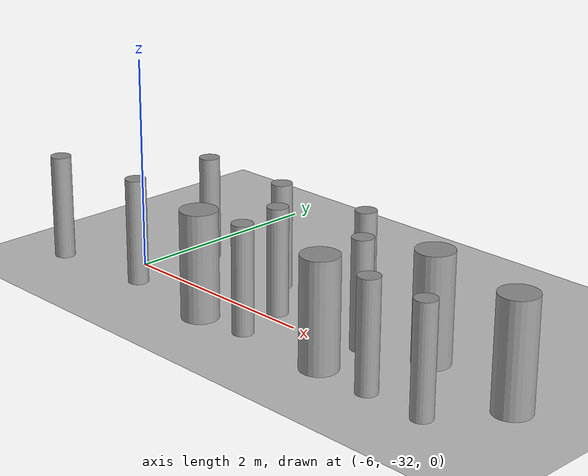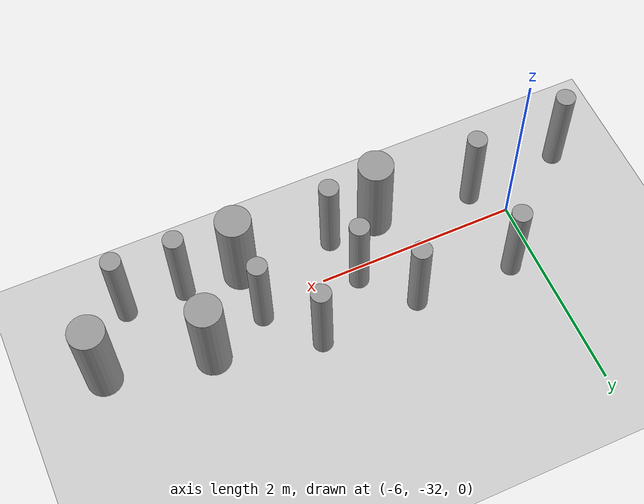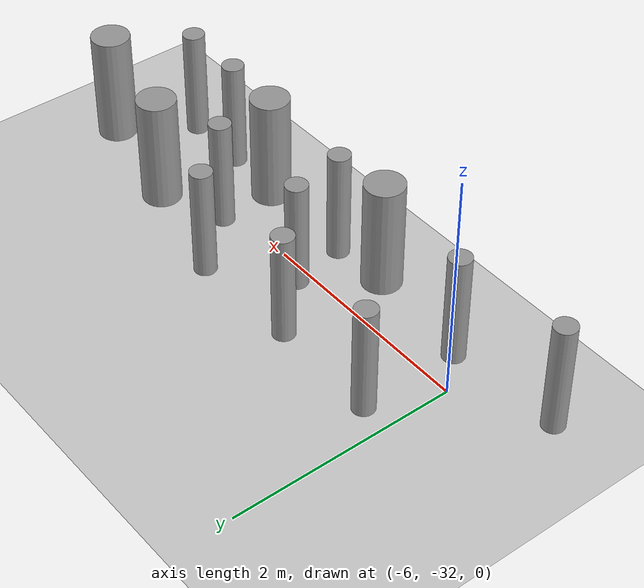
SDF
<sdf version="1.6">
 <world name="default">
  <model name="ground_plane">
   <static>1</static>
   <link name="link">
    <collision name="collision">
     <geometry><plane><normal>0 0 1</normal><size>100 100</size></plane></geometry>
     <surface><friction><ode><mu>100</mu><mu2>50</mu2></ode></friction></surface>
    </collision>
    <visual name="visual">
     <cast_shadows>0</cast_shadows>
     <geometry><plane><normal>0 0 1</normal><size>100 100</size></plane></geometry>
     <material>
      <script><uri>file://media/materials/scripts/gazebo.material</uri><name>Gazebo/Grey</name></script>
     </material>
    </visual>
   </link>
  </model>
  <model name="cyl_wall_clone_clone_3_clone_3">
   <link name="link_0">
    <pose>-2.73893 -0.366465 0 0 -0 0</pose>
    <inertial>
     <mass>0.0374993</mass>
     <inertia>
      <ixx>0.00321281</ixx>
      <ixy>0</ixy>
      <ixz>0</ixz>
      <iyy>0.00321281</iyy>
      <iyz>0</iyz>
      <izz>0.000175774</izz>
     </inertia>
    </inertial>
    <visual name="visual">
     <geometry><cylinder><radius>0.0968661</radius><length>1</length></cylinder></geometry>
     <material>
      <lighting>1</lighting>
      <script><uri>file://media/materials/scripts/gazebo.material</uri><name>Gazebo/Grey</name></script>
      <ambient>0.3 0.3 0.3 1</ambient>
      <diffuse>0.7 0.7 0.7 1</diffuse>
      <specular>0.01 0.01 0.01 1</specular>
      <emissive>0 0 0 1</emissive>
     </material>
    </visual>
    <collision name="collision">
     <geometry><cylinder><radius>0.096866</radius><length>1</length></cylinder></geometry>
     <surface>
      <friction>
       <ode><mu>1</mu><mu2>1</mu2><fdir1>0 0 0</fdir1><slip1>0</slip1><slip2>0</slip2></ode>
       <torsional>
        <coefficient>1</coefficient>
        <patch_radius>0</patch_radius>
        <surface_radius>0</surface_radius>
        <use_patch_radius>1</use_patch_radius>
        <ode><slip>0</slip></ode>
       </torsional>
      </friction>
      <bounce><restitution_coefficient>0</restitution_coefficient><threshold>1e+06</threshold></bounce>
      <contact>
       <collide_without_contact>0</collide_without_contact>
       <collide_without_contact_bitmask>1</collide_without_contact_bitmask>
       <collide_bitmask>1</collide_bitmask>
       <ode>
        <soft_cfm>0</soft_cfm>
        <soft_erp>0.2</soft_erp>
        <kp>1e+13</kp>
        <kd>1</kd>
        <max_vel>0.01</max_vel>
        <min_depth>0</min_depth>
       </ode>
       <bullet>
        <split_impulse>1</split_impulse>
        <split_impulse_penetration_threshold>-0.01</split_impulse_penetration_threshold>
        <soft_cfm>0</soft_cfm>
        <soft_erp>0.2</soft_erp>
        <kp>1e+13</kp>
        <kd>1</kd>
       </bullet>
      </contact>
     </surface>
    </collision>
   </link>
   <link name="link_0_clone">
    <pose>-1.73893 0.61877 0 0 -0 0</pose>
    <inertial>
     <mass>0.0374993</mass>
     <inertia>
      <ixx>0.00321281</ixx>
      <ixy>0</ixy>
      <ixz>0</ixz>
      <iyy>0.00321281</iyy>
      <iyz>0</iyz>
      <izz>0.000175774</izz>
     </inertia>
    </inertial>
    <visual name="visual">
     <geometry><cylinder><radius>0.0968661</radius><length>1</length></cylinder></geometry>
     <material>
      <lighting>1</lighting>
      <script><uri>file://media/materials/scripts/gazebo.material</uri><name>Gazebo/Grey</name></script>
      <ambient>0.3 0.3 0.3 1</ambient>
      <diffuse>0.7 0.7 0.7 1</diffuse>
      <specular>0.01 0.01 0.01 1</specular>
      <emissive>0 0 0 1</emissive>
      <shader type="pixel"/>
     </material>
    </visual>
    <collision name="collision">
     <geometry><cylinder><radius>0.096866</radius><length>1</length></cylinder></geometry>
     <surface>
      <friction>
       <ode><mu>1</mu><mu2>1</mu2><fdir1>0 0 0</fdir1><slip1>0</slip1><slip2>0</slip2></ode>
       <torsional>
        <coefficient>1</coefficient>
        <patch_radius>0</patch_radius>
        <surface_radius>0</surface_radius>
        <use_patch_radius>1</use_patch_radius>
        <ode><slip>0</slip></ode>
       </torsional>
      </friction>
      <bounce><restitution_coefficient>0</restitution_coefficient><threshold>1e+06</threshold></bounce>
      <contact>
       <collide_without_contact>0</collide_without_contact>
       <collide_without_contact_bitmask>1</collide_without_contact_bitmask>
       <collide_bitmask>1</collide_bitmask>
       <ode>
        <soft_cfm>0</soft_cfm>
        <soft_erp>0.2</soft_erp>
        <kp>1e+13</kp>
        <kd>1</kd>
        <max_vel>0.01</max_vel>
        <min_depth>0</min_depth>
       </ode>
       <bullet>
        <split_impulse>1</split_impulse>
        <split_impulse_penetration_threshold>-0.01</split_impulse_penetration_threshold>
        <soft_cfm>0</soft_cfm>
        <soft_erp>0.2</soft_erp>
        <kp>1e+13</kp>
        <kd>1</kd>
       </bullet>
      </contact>
     </surface>
    </collision>
   </link>
   <link name="link_0_clone_clone">
    <pose>-0.327073 0.143919 0 0 -0 0</pose>
    <inertial>
     <mass>0.0374993</mass>
     <inertia>
      <ixx>0.00321281</ixx>
      <ixy>0</ixy>
      <ixz>0</ixz>
      <iyy>0.00321281</iyy>
      <iyz>0</iyz>
      <izz>0.000175774</izz>
     </inertia>
    </inertial>
    <visual name="visual">
     <geometry><cylinder><radius>0.0968661</radius><length>1</length></cylinder></geometry>
     <material>
      <lighting>1</lighting>
      <script><uri>file://media/materials/scripts/gazebo.material</uri><name>Gazebo/Grey</name></script>
      <ambient>0.3 0.3 0.3 1</ambient>
      <diffuse>0.7 0.7 0.7 1</diffuse>
      <specular>0.01 0.01 0.01 1</specular>
      <emissive>0 0 0 1</emissive>
      <shader type="pixel"/>
     </material>
    </visual>
    <collision name="collision">
     <geometry><cylinder><radius>0.096866</radius><length>1</length></cylinder></geometry>
     <surface>
      <friction>
       <ode><mu>1</mu><mu2>1</mu2><fdir1>0 0 0</fdir1><slip1>0</slip1><slip2>0</slip2></ode>
       <torsional>
        <coefficient>1</coefficient>
        <patch_radius>0</patch_radius>
        <surface_radius>0</surface_radius>
        <use_patch_radius>1</use_patch_radius>
        <ode><slip>0</slip></ode>
       </torsional>
      </friction>
      <bounce><restitution_coefficient>0</restitution_coefficient><threshold>1e+06</threshold></bounce>
      <contact>
       <collide_without_contact>0</collide_without_contact>
       <collide_without_contact_bitmask>1</collide_without_contact_bitmask>
       <collide_bitmask>1</collide_bitmask>
       <ode>
        <soft_cfm>0</soft_cfm>
        <soft_erp>0.2</soft_erp>
        <kp>1e+13</kp>
        <kd>1</kd>
        <max_vel>0.01</max_vel>
        <min_depth>0</min_depth>
       </ode>
       <bullet>
        <split_impulse>1</split_impulse>
        <split_impulse_penetration_threshold>-0.01</split_impulse_penetration_threshold>
        <soft_cfm>0</soft_cfm>
        <soft_erp>0.2</soft_erp>
        <kp>1e+13</kp>
        <kd>1</kd>
       </bullet>
      </contact>
     </surface>
    </collision>
   </link>
   <link name="link_0_clone_clone_0">
    <pose>1.26107 -0.419359 0 0 -0 0</pose>
    <inertial>
     <mass>0.0374993</mass>
     <inertia>
      <ixx>0.00321281</ixx>
      <ixy>0</ixy>
      <ixz>0</ixz>
      <iyy>0.00321281</iyy>
      <iyz>0</iyz>
      <izz>0.000175774</izz>
     </inertia>
    </inertial>
    <visual name="visual">
     <geometry><cylinder><radius>0.0968661</radius><length>1</length></cylinder></geometry>
     <material>
      <lighting>1</lighting>
      <script><uri>file://media/materials/scripts/gazebo.material</uri><name>Gazebo/Grey</name></script>
      <ambient>0.3 0.3 0.3 1</ambient>
      <diffuse>0.7 0.7 0.7 1</diffuse>
      <specular>0.01 0.01 0.01 1</specular>
      <emissive>0 0 0 1</emissive>
      <shader type="pixel"/>
     </material>
    </visual>
    <collision name="collision">
     <geometry><cylinder><radius>0.096866</radius><length>1</length></cylinder></geometry>
     <surface>
      <friction>
       <ode><mu>1</mu><mu2>1</mu2><fdir1>0 0 0</fdir1><slip1>0</slip1><slip2>0</slip2></ode>
       <torsional>
        <coefficient>1</coefficient>
        <patch_radius>0</patch_radius>
        <surface_radius>0</surface_radius>
        <use_patch_radius>1</use_patch_radius>
        <ode><slip>0</slip></ode>
       </torsional>
      </friction>
      <bounce><restitution_coefficient>0</restitution_coefficient><threshold>1e+06</threshold></bounce>
      <contact>
       <collide_without_contact>0</collide_without_contact>
       <collide_without_contact_bitmask>1</collide_without_contact_bitmask>
       <collide_bitmask>1</collide_bitmask>
       <ode>
        <soft_cfm>0</soft_cfm>
        <soft_erp>0.2</soft_erp>
        <kp>1e+13</kp>
        <kd>1</kd>
        <max_vel>0.01</max_vel>
        <min_depth>0</min_depth>
       </ode>
       <bullet>
        <split_impulse>1</split_impulse>
        <split_impulse_penetration_threshold>-0.01</split_impulse_penetration_threshold>
        <soft_cfm>0</soft_cfm>
        <soft_erp>0.2</soft_erp>
        <kp>1e+13</kp>
        <kd>1</kd>
       </bullet>
      </contact>
     </surface>
    </collision>
   </link>
   <link name="link_0_clone_clone_1">
    <pose>-1.73893 -0.277168 0 0 -0 0</pose>
    <inertial>
     <mass>0.0374993</mass>
     <inertia>
      <ixx>0.00321281</ixx>
      <ixy>0</ixy>
      <ixz>0</ixz>
      <iyy>0.00321281</iyy>
      <iyz>0</iyz>
      <izz>0.000175774</izz>
     </inertia>
    </inertial>
    <visual name="visual">
     <geometry><cylinder><radius>0.0968661</radius><length>1</length></cylinder></geometry>
     <material>
      <lighting>1</lighting>
      <script><uri>file://media/materials/scripts/gazebo.material</uri><name>Gazebo/Grey</name></script>
      <ambient>0.3 0.3 0.3 1</ambient>
      <diffuse>0.7 0.7 0.7 1</diffuse>
      <specular>0.01 0.01 0.01 1</specular>
      <emissive>0 0 0 1</emissive>
      <shader type="pixel"/>
     </material>
    </visual>
    <collision name="collision">
     <geometry><cylinder><radius>0.096866</radius><length>1</length></cylinder></geometry>
     <surface>
      <friction>
       <ode><mu>1</mu><mu2>1</mu2><fdir1>0 0 0</fdir1><slip1>0</slip1><slip2>0</slip2></ode>
       <torsional>
        <coefficient>1</coefficient>
        <patch_radius>0</patch_radius>
        <surface_radius>0</surface_radius>
        <use_patch_radius>1</use_patch_radius>
        <ode><slip>0</slip></ode>
       </torsional>
      </friction>
      <bounce><restitution_coefficient>0</restitution_coefficient><threshold>1e+06</threshold></bounce>
      <contact>
       <collide_without_contact>0</collide_without_contact>
       <collide_without_contact_bitmask>1</collide_without_contact_bitmask>
       <collide_bitmask>1</collide_bitmask>
       <ode>
        <soft_cfm>0</soft_cfm>
        <soft_erp>0.2</soft_erp>
        <kp>1e+13</kp>
        <kd>1</kd>
        <max_vel>0.01</max_vel>
        <min_depth>0</min_depth>
       </ode>
       <bullet>
        <split_impulse>1</split_impulse>
        <split_impulse_penetration_threshold>-0.01</split_impulse_penetration_threshold>
        <soft_cfm>0</soft_cfm>
        <soft_erp>0.2</soft_erp>
        <kp>1e+13</kp>
        <kd>1</kd>
       </bullet>
      </contact>
     </surface>
    </collision>
   </link>
   <link name="link_0_clone_clone_2">
    <pose>-0.738934 0.593961 0 0 -0 0</pose>
    <inertial>
     <mass>0.0374993</mass>
     <inertia>
      <ixx>0.00321281</ixx>
      <ixy>0</ixy>
      <ixz>0</ixz>
      <iyy>0.00321281</iyy>
      <iyz>0</iyz>
      <izz>0.000175774</izz>
     </inertia>
    </inertial>
    <visual name="visual">
     <geometry><cylinder><radius>0.0968661</radius><length>1</length></cylinder></geometry>
     <material>
      <lighting>1</lighting>
      <script><uri>file://media/materials/scripts/gazebo.material</uri><name>Gazebo/Grey</name></script>
      <ambient>0.3 0.3 0.3 1</ambient>
      <diffuse>0.7 0.7 0.7 1</diffuse>
      <specular>0.01 0.01 0.01 1</specular>
      <emissive>0 0 0 1</emissive>
      <shader type="pixel"/>
     </material>
    </visual>
    <collision name="collision">
     <geometry><cylinder><radius>0.096866</radius><length>1</length></cylinder></geometry>
     <surface>
      <friction>
       <ode><mu>1</mu><mu2>1</mu2><fdir1>0 0 0</fdir1><slip1>0</slip1><slip2>0</slip2></ode>
       <torsional>
        <coefficient>1</coefficient>
        <patch_radius>0</patch_radius>
        <surface_radius>0</surface_radius>
        <use_patch_radius>1</use_patch_radius>
        <ode><slip>0</slip></ode>
       </torsional>
      </friction>
      <bounce><restitution_coefficient>0</restitution_coefficient><threshold>1e+06</threshold></bounce>
      <contact>
       <collide_without_contact>0</collide_without_contact>
       <collide_without_contact_bitmask>1</collide_without_contact_bitmask>
       <collide_bitmask>1</collide_bitmask>
       <ode>
        <soft_cfm>0</soft_cfm>
        <soft_erp>0.2</soft_erp>
        <kp>1e+13</kp>
        <kd>1</kd>
        <max_vel>0.01</max_vel>
        <min_depth>0</min_depth>
       </ode>
       <bullet>
        <split_impulse>1</split_impulse>
        <split_impulse_penetration_threshold>-0.01</split_impulse_penetration_threshold>
        <soft_cfm>0</soft_cfm>
        <soft_erp>0.2</soft_erp>
        <kp>1e+13</kp>
        <kd>1</kd>
       </bullet>
      </contact>
     </surface>
    </collision>
   </link>
   <link name="link_0_clone_clone_3">
    <pose>0.261066 0.624849 0 0 -0 0</pose>
    <inertial>
     <mass>0.0374993</mass>
     <inertia>
      <ixx>0.00321281</ixx>
      <ixy>0</ixy>
      <ixz>0</ixz>
      <iyy>0.00321281</iyy>
      <iyz>0</iyz>
      <izz>0.000175774</izz>
     </inertia>
    </inertial>
    <visual name="visual">
     <geometry><cylinder><radius>0.0968661</radius><length>1</length></cylinder></geometry>
     <material>
      <lighting>1</lighting>
      <script><uri>file://media/materials/scripts/gazebo.material</uri><name>Gazebo/Grey</name></script>
      <ambient>0.3 0.3 0.3 1</ambient>
      <diffuse>0.7 0.7 0.7 1</diffuse>
      <specular>0.01 0.01 0.01 1</specular>
      <emissive>0 0 0 1</emissive>
      <shader type="pixel"/>
     </material>
    </visual>
    <collision name="collision">
     <geometry><cylinder><radius>0.096866</radius><length>1</length></cylinder></geometry>
     <surface>
      <friction>
       <ode><mu>1</mu><mu2>1</mu2><fdir1>0 0 0</fdir1><slip1>0</slip1><slip2>0</slip2></ode>
       <torsional>
        <coefficient>1</coefficient>
        <patch_radius>0</patch_radius>
        <surface_radius>0</surface_radius>
        <use_patch_radius>1</use_patch_radius>
        <ode><slip>0</slip></ode>
       </torsional>
      </friction>
      <bounce><restitution_coefficient>0</restitution_coefficient><threshold>1e+06</threshold></bounce>
      <contact>
       <collide_without_contact>0</collide_without_contact>
       <collide_without_contact_bitmask>1</collide_without_contact_bitmask>
       <collide_bitmask>1</collide_bitmask>
       <ode>
        <soft_cfm>0</soft_cfm>
        <soft_erp>0.2</soft_erp>
        <kp>1e+13</kp>
        <kd>1</kd>
        <max_vel>0.01</max_vel>
        <min_depth>0</min_depth>
       </ode>
       <bullet>
        <split_impulse>1</split_impulse>
        <split_impulse_penetration_threshold>-0.01</split_impulse_penetration_threshold>
        <soft_cfm>0</soft_cfm>
        <soft_erp>0.2</soft_erp>
        <kp>1e+13</kp>
        <kd>1</kd>
       </bullet>
      </contact>
     </surface>
    </collision>
   </link>
   <link name="link_0_clone_clone_4">
    <pose>-0.239049 -0.353105 0 0 -0 0</pose>
    <inertial>
     <mass>0.0374993</mass>
     <inertia>
      <ixx>0.00321281</ixx>
      <ixy>0</ixy>
      <ixz>0</ixz>
      <iyy>0.00321281</iyy>
      <iyz>0</iyz>
      <izz>0.000175774</izz>
     </inertia>
    </inertial>
    <visual name="visual">
     <geometry><cylinder><radius>0.0968661</radius><length>1</length></cylinder></geometry>
     <material>
      <lighting>1</lighting>
      <script><uri>file://media/materials/scripts/gazebo.material</uri><name>Gazebo/Grey</name></script>
      <ambient>0.3 0.3 0.3 1</ambient>
      <diffuse>0.7 0.7 0.7 1</diffuse>
      <specular>0.01 0.01 0.01 1</specular>
      <emissive>0 0 0 1</emissive>
      <shader type="pixel"/>
     </material>
    </visual>
    <collision name="collision">
     <geometry><cylinder><radius>0.096866</radius><length>1</length></cylinder></geometry>
     <surface>
      <friction>
       <ode><mu>1</mu><mu2>1</mu2><fdir1>0 0 0</fdir1><slip1>0</slip1><slip2>0</slip2></ode>
       <torsional>
        <coefficient>1</coefficient>
        <patch_radius>0</patch_radius>
        <surface_radius>0</surface_radius>
        <use_patch_radius>1</use_patch_radius>
        <ode><slip>0</slip></ode>
       </torsional>
      </friction>
      <bounce><restitution_coefficient>0</restitution_coefficient><threshold>1e+06</threshold></bounce>
      <contact>
       <collide_without_contact>0</collide_without_contact>
       <collide_without_contact_bitmask>1</collide_without_contact_bitmask>
       <collide_bitmask>1</collide_bitmask>
       <ode>
        <soft_cfm>0</soft_cfm>
        <soft_erp>0.2</soft_erp>
        <kp>1e+13</kp>
        <kd>1</kd>
        <max_vel>0.01</max_vel>
        <min_depth>0</min_depth>
       </ode>
       <bullet>
        <split_impulse>1</split_impulse>
        <split_impulse_penetration_threshold>-0.01</split_impulse_penetration_threshold>
        <soft_cfm>0</soft_cfm>
        <soft_erp>0.2</soft_erp>
        <kp>1e+13</kp>
        <kd>1</kd>
       </bullet>
      </contact>
     </surface>
    </collision>
   </link>
   <link name="link_0_clone_clone_5">
    <pose>0.672792 0.143919 0 0 -0 0</pose>
    <inertial>
     <mass>0.0374993</mass>
     <inertia>
      <ixx>0.00321281</ixx>
      <ixy>0</ixy>
      <ixz>0</ixz>
      <iyy>0.00321281</iyy>
      <iyz>0</iyz>
      <izz>0.000175774</izz>
     </inertia>
    </inertial>
    <visual name="visual">
     <geometry><cylinder><radius>0.0968661</radius><length>1</length></cylinder></geometry>
     <material>
      <lighting>1</lighting>
      <script><uri>file://media/materials/scripts/gazebo.material</uri><name>Gazebo/Grey</name></script>
      <ambient>0.3 0.3 0.3 1</ambient>
      <diffuse>0.7 0.7 0.7 1</diffuse>
      <specular>0.01 0.01 0.01 1</specular>
      <emissive>0 0 0 1</emissive>
      <shader type="pixel"/>
     </material>
    </visual>
    <collision name="collision">
     <geometry><cylinder><radius>0.096866</radius><length>1</length></cylinder></geometry>
     <surface>
      <friction>
       <ode><mu>1</mu><mu2>1</mu2><fdir1>0 0 0</fdir1><slip1>0</slip1><slip2>0</slip2></ode>
       <torsional>
        <coefficient>1</coefficient>
        <patch_radius>0</patch_radius>
        <surface_radius>0</surface_radius>
        <use_patch_radius>1</use_patch_radius>
        <ode><slip>0</slip></ode>
       </torsional>
      </friction>
      <bounce><restitution_coefficient>0</restitution_coefficient><threshold>1e+06</threshold></bounce>
      <contact>
       <collide_without_contact>0</collide_without_contact>
       <collide_without_contact_bitmask>1</collide_without_contact_bitmask>
       <collide_bitmask>1</collide_bitmask>
       <ode>
        <soft_cfm>0</soft_cfm>
        <soft_erp>0.2</soft_erp>
        <kp>1e+13</kp>
        <kd>1</kd>
        <max_vel>0.01</max_vel>
        <min_depth>0</min_depth>
       </ode>
       <bullet>
        <split_impulse>1</split_impulse>
        <split_impulse_penetration_threshold>-0.01</split_impulse_penetration_threshold>
        <soft_cfm>0</soft_cfm>
        <soft_erp>0.2</soft_erp>
        <kp>1e+13</kp>
        <kd>1</kd>
       </bullet>
      </contact>
     </surface>
    </collision>
   </link>
   <link name="link_0_clone_clone_6">
    <pose>1.84596 -0.433423 0 0 -0 0</pose>
    <inertial>
     <mass>0.0374993</mass>
     <inertia>
      <ixx>0.00321281</ixx>
      <ixy>0</ixy>
      <ixz>0</ixz>
      <iyy>0.00321281</iyy>
      <iyz>0</iyz>
      <izz>0.000175774</izz>
     </inertia>
    </inertial>
    <visual name="visual">
     <geometry><cylinder><radius>0.0968661</radius><length>1</length></cylinder></geometry>
     <material>
      <lighting>1</lighting>
      <script><uri>file://media/materials/scripts/gazebo.material</uri><name>Gazebo/Grey</name></script>
      <ambient>0.3 0.3 0.3 1</ambient>
      <diffuse>0.7 0.7 0.7 1</diffuse>
      <specular>0.01 0.01 0.01 1</specular>
      <emissive>0 0 0 1</emissive>
      <shader type="pixel"/>
     </material>
    </visual>
    <collision name="collision">
     <geometry><cylinder><radius>0.096866</radius><length>1</length></cylinder></geometry>
     <surface>
      <friction>
       <ode><mu>1</mu><mu2>1</mu2><fdir1>0 0 0</fdir1><slip1>0</slip1><slip2>0</slip2></ode>
       <torsional>
        <coefficient>1</coefficient>
        <patch_radius>0</patch_radius>
        <surface_radius>0</surface_radius>
        <use_patch_radius>1</use_patch_radius>
        <ode><slip>0</slip></ode>
       </torsional>
      </friction>
      <bounce><restitution_coefficient>0</restitution_coefficient><threshold>1e+06</threshold></bounce>
      <contact>
       <collide_without_contact>0</collide_without_contact>
       <collide_without_contact_bitmask>1</collide_without_contact_bitmask>
       <collide_bitmask>1</collide_bitmask>
       <ode>
        <soft_cfm>0</soft_cfm>
        <soft_erp>0.2</soft_erp>
        <kp>1e+13</kp>
        <kd>1</kd>
        <max_vel>0.01</max_vel>
        <min_depth>0</min_depth>
       </ode>
       <bullet>
        <split_impulse>1</split_impulse>
        <split_impulse_penetration_threshold>-0.01</split_impulse_penetration_threshold>
        <soft_cfm>0</soft_cfm>
        <soft_erp>0.2</soft_erp>
        <kp>1e+13</kp>
        <kd>1</kd>
       </bullet>
      </contact>
     </surface>
    </collision>
   </link>
   <link name="link_1">
    <pose>-0.738934 -0.397931 0 0 -0 0</pose>
    <inertial>
     <mass>0.117398</mass>
     <inertia>
      <ixx>0.0106445</ixx>
      <ixy>0</ixy>
      <ixz>0</ixz>
      <iyy>0.0106445</iyy>
      <iyz>0</iyz>
      <izz>0.00172278</izz>
     </inertia>
    </inertial>
    <visual name="visual">
     <geometry><cylinder><radius>0.171317</radius><length>1</length></cylinder></geometry>
     <material>
      <lighting>1</lighting>
      <script><uri>file://media/materials/scripts/gazebo.material</uri><name>Gazebo/Grey</name></script>
      <ambient>0.3 0.3 0.3 1</ambient>
      <diffuse>0.7 0.7 0.7 1</diffuse>
      <specular>0.01 0.01 0.01 1</specular>
      <emissive>0 0 0 1</emissive>
     </material>
    </visual>
    <collision name="collision">
     <geometry><cylinder><radius>0.171317</radius><length>1</length></cylinder></geometry>
     <surface>
      <friction>
       <ode><mu>1</mu><mu2>1</mu2><fdir1>0 0 0</fdir1><slip1>0</slip1><slip2>0</slip2></ode>
       <torsional>
        <coefficient>1</coefficient>
        <patch_radius>0</patch_radius>
        <surface_radius>0</surface_radius>
        <use_patch_radius>1</use_patch_radius>
        <ode><slip>0</slip></ode>
       </torsional>
      </friction>
      <bounce><restitution_coefficient>0</restitution_coefficient><threshold>1e+06</threshold></bounce>
      <contact>
       <collide_without_contact>0</collide_without_contact>
       <collide_without_contact_bitmask>1</collide_without_contact_bitmask>
       <collide_bitmask>1</collide_bitmask>
       <ode>
        <soft_cfm>0</soft_cfm>
        <soft_erp>0.2</soft_erp>
        <kp>1e+13</kp>
        <kd>1</kd>
        <max_vel>0.01</max_vel>
        <min_depth>0</min_depth>
       </ode>
       <bullet>
        <split_impulse>1</split_impulse>
        <split_impulse_penetration_threshold>-0.01</split_impulse_penetration_threshold>
        <soft_cfm>0</soft_cfm>
        <soft_erp>0.2</soft_erp>
        <kp>1e+13</kp>
        <kd>1</kd>
       </bullet>
      </contact>
     </surface>
    </collision>
   </link>
   <link name="link_1_clone">
    <pose>0.697784 -0.380861 0 0 -0 0</pose>
    <inertial>
     <mass>0.117398</mass>
     <inertia>
      <ixx>0.0106445</ixx>
      <ixy>0</ixy>
      <ixz>0</ixz>
      <iyy>0.0106445</iyy>
      <iyz>0</iyz>
      <izz>0.00172278</izz>
     </inertia>
    </inertial>
    <visual name="visual">
     <geometry><cylinder><radius>0.171317</radius><length>1</length></cylinder></geometry>
     <material>
      <lighting>1</lighting>
      <script><uri>file://media/materials/scripts/gazebo.material</uri><name>Gazebo/Grey</name></script>
      <ambient>0.3 0.3 0.3 1</ambient>
      <diffuse>0.7 0.7 0.7 1</diffuse>
      <specular>0.01 0.01 0.01 1</specular>
      <emissive>0 0 0 1</emissive>
      <shader type="pixel"/>
     </material>
    </visual>
    <collision name="collision">
     <geometry><cylinder><radius>0.171317</radius><length>1</length></cylinder></geometry>
     <surface>
      <friction>
       <ode><mu>1</mu><mu2>1</mu2><fdir1>0 0 0</fdir1><slip1>0</slip1><slip2>0</slip2></ode>
       <torsional>
        <coefficient>1</coefficient>
        <patch_radius>0</patch_radius>
        <surface_radius>0</surface_radius>
        <use_patch_radius>1</use_patch_radius>
        <ode><slip>0</slip></ode>
       </torsional>
      </friction>
      <bounce><restitution_coefficient>0</restitution_coefficient><threshold>1e+06</threshold></bounce>
      <contact>
       <collide_without_contact>0</collide_without_contact>
       <collide_without_contact_bitmask>1</collide_without_contact_bitmask>
       <collide_bitmask>1</collide_bitmask>
       <ode>
        <soft_cfm>0</soft_cfm>
        <soft_erp>0.2</soft_erp>
        <kp>1e+13</kp>
        <kd>1</kd>
        <max_vel>0.01</max_vel>
        <min_depth>0</min_depth>
       </ode>
       <bullet>
        <split_impulse>1</split_impulse>
        <split_impulse_penetration_threshold>-0.01</split_impulse_penetration_threshold>
        <soft_cfm>0</soft_cfm>
        <soft_erp>0.2</soft_erp>
        <kp>1e+13</kp>
        <kd>1</kd>
       </bullet>
      </contact>
     </surface>
    </collision>
   </link>
   <link name="link_1_clone_0">
    <pose>1.26107 0.358974 0 0 -0 0</pose>
    <inertial>
     <mass>0.117398</mass>
     <inertia>
      <ixx>0.0106445</ixx>
      <ixy>0</ixy>
      <ixz>0</ixz>
      <iyy>0.0106445</iyy>
      <iyz>0</iyz>
      <izz>0.00172278</izz>
     </inertia>
    </inertial>
    <visual name="visual">
     <geometry><cylinder><radius>0.171317</radius><length>1</length></cylinder></geometry>
     <material>
      <lighting>1</lighting>
      <script><uri>file://media/materials/scripts/gazebo.material</uri><name>Gazebo/Grey</name></script>
      <ambient>0.3 0.3 0.3 1</ambient>
      <diffuse>0.7 0.7 0.7 1</diffuse>
      <specular>0.01 0.01 0.01 1</specular>
      <emissive>0 0 0 1</emissive>
      <shader type="pixel"/>
     </material>
    </visual>
    <collision name="collision">
     <geometry><cylinder><radius>0.171317</radius><length>1</length></cylinder></geometry>
     <surface>
      <friction>
       <ode><mu>1</mu><mu2>1</mu2><fdir1>0 0 0</fdir1><slip1>0</slip1><slip2>0</slip2></ode>
       <torsional>
        <coefficient>1</coefficient>
        <patch_radius>0</patch_radius>
        <surface_radius>0</surface_radius>
        <use_patch_radius>1</use_patch_radius>
        <ode><slip>0</slip></ode>
       </torsional>
      </friction>
      <bounce><restitution_coefficient>0</restitution_coefficient><threshold>1e+06</threshold></bounce>
      <contact>
       <collide_without_contact>0</collide_without_contact>
       <collide_without_contact_bitmask>1</collide_without_contact_bitmask>
       <collide_bitmask>1</collide_bitmask>
       <ode>
        <soft_cfm>0</soft_cfm>
        <soft_erp>0.2</soft_erp>
        <kp>1e+13</kp>
        <kd>1</kd>
        <max_vel>0.01</max_vel>
        <min_depth>0</min_depth>
       </ode>
       <bullet>
        <split_impulse>1</split_impulse>
        <split_impulse_penetration_threshold>-0.01</split_impulse_penetration_threshold>
        <soft_cfm>0</soft_cfm>
        <soft_erp>0.2</soft_erp>
        <kp>1e+13</kp>
        <kd>1</kd>
       </bullet>
      </contact>
     </surface>
    </collision>
   </link>
   <link name="link_1_clone_1">
    <pose>2.26107 0.143919 0 0 -0 0</pose>
    <inertial>
     <mass>0.117398</mass>
     <inertia>
      <ixx>0.0106445</ixx>
      <ixy>0</ixy>
      <ixz>0</ixz>
      <iyy>0.0106445</iyy>
      <iyz>0</iyz>
      <izz>0.00172278</izz>
     </inertia>
    </inertial>
    <visual name="visual">
     <geometry><cylinder><radius>0.171317</radius><length>1</length></cylinder></geometry>
     <material>
      <lighting>1</lighting>
      <script><uri>file://media/materials/scripts/gazebo.material</uri><name>Gazebo/Grey</name></script>
      <ambient>0.3 0.3 0.3 1</ambient>
      <diffuse>0.7 0.7 0.7 1</diffuse>
      <specular>0.01 0.01 0.01 1</specular>
      <emissive>0 0 0 1</emissive>
      <shader type="pixel"/>
     </material>
    </visual>
    <collision name="collision">
     <geometry><cylinder><radius>0.171317</radius><length>1</length></cylinder></geometry>
     <surface>
      <friction>
       <ode><mu>1</mu><mu2>1</mu2><fdir1>0 0 0</fdir1><slip1>0</slip1><slip2>0</slip2></ode>
       <torsional>
        <coefficient>1</coefficient>
        <patch_radius>0</patch_radius>
        <surface_radius>0</surface_radius>
        <use_patch_radius>1</use_patch_radius>
        <ode><slip>0</slip></ode>
       </torsional>
      </friction>
      <bounce><restitution_coefficient>0</restitution_coefficient><threshold>1e+06</threshold></bounce>
      <contact>
       <collide_without_contact>0</collide_without_contact>
       <collide_without_contact_bitmask>1</collide_without_contact_bitmask>
       <collide_bitmask>1</collide_bitmask>
       <ode>
        <soft_cfm>0</soft_cfm>
        <soft_erp>0.2</soft_erp>
        <kp>1e+13</kp>
        <kd>1</kd>
        <max_vel>0.01</max_vel>
        <min_depth>0</min_depth>
       </ode>
       <bullet>
        <split_impulse>1</split_impulse>
        <split_impulse_penetration_threshold>-0.01</split_impulse_penetration_threshold>
        <soft_cfm>0</soft_cfm>
        <soft_erp>0.2</soft_erp>
        <kp>1e+13</kp>
        <kd>1</kd>
       </bullet>
      </contact>
     </surface>
    </collision>
   </link>
   <static>1</static>
   <pose>-3.99829 -32.0213 0.5 0 -0 0</pose>
  </model>
 </world>
</sdf>
